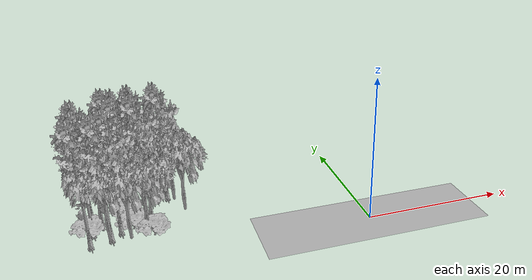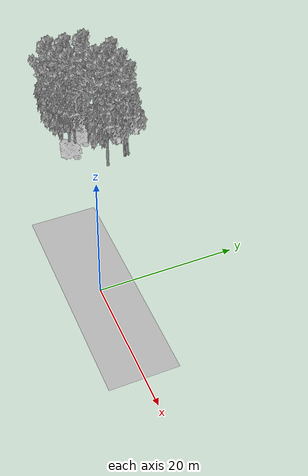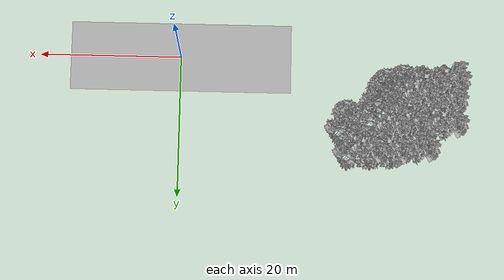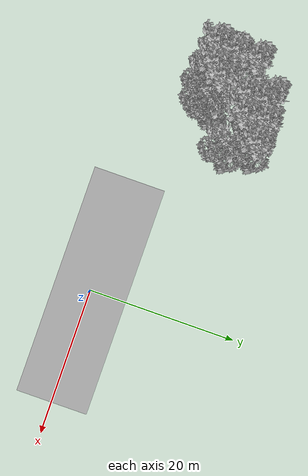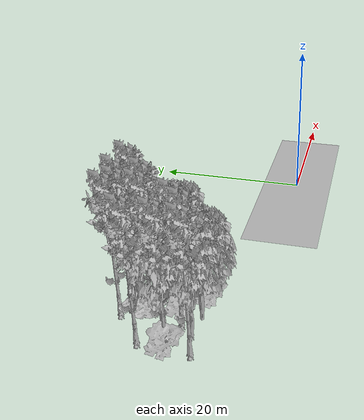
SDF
<sdf version="1.7">
 <world name="default">
  <model name="ground_plane">
   <static>1</static>
   <link name="link">
    <collision name="collision">
     <pose>-50 0 0 0 -0 0</pose>
     <geometry><plane><normal>0 0 1</normal><size>100 100</size></plane></geometry>
     <surface><contact><ode><min_depth>0.01</min_depth><max_vel>0</max_vel></ode></contact></surface>
    </collision>
    <visual name="grass">
     <cast_shadows>0</cast_shadows>
     <geometry>
      <mesh>
       <scale>0.5814285714285714 0.18142857142857144 0.1</scale>
       <uri>file://grass_plane/meshes/grass_plane.dae</uri>
      </mesh>
     </geometry>
    </visual>
   </link>
  </model>
  <model name="Tree 4">
   <static>1</static>
   <pose>-33.80315675549006 5.824767551993318 0 1.57079 -0 0</pose>
   <link name="link">
    <collision name="collision">
     <geometry><mesh><scale>3.5 5 3.5</scale><uri>model://tree_9/meshes/tree_9.obj</uri></mesh></geometry>
    </collision>
    <visual name="visual">
     <geometry><mesh><scale>3.5 5 3.5</scale><uri>model://tree_9/meshes/tree_9.obj</uri></mesh></geometry>
    </visual>
   </link>
  </model>
  <model name="Tree 53">
   <static>1</static>
   <pose>-29.01432411279122 14.427269468917586 0 1.57079 -0 0</pose>
   <link name="link">
    <collision name="collision">
     <geometry><mesh><scale>3.5 5 3.5</scale><uri>model://tree_9/meshes/tree_9.obj</uri></mesh></geometry>
    </collision>
    <visual name="visual">
     <geometry><mesh><scale>3.5 5 3.5</scale><uri>model://tree_9/meshes/tree_9.obj</uri></mesh></geometry>
    </visual>
   </link>
  </model>
  <model name="Tree 68">
   <static>1</static>
   <pose>-36.05320930856779 7.759473650637787 0 1.57079 -0 0</pose>
   <link name="link">
    <collision name="collision">
     <geometry><mesh><scale>3.5 5 3.5</scale><uri>model://tree_9/meshes/tree_9.obj</uri></mesh></geometry>
    </collision>
    <visual name="visual">
     <geometry><mesh><scale>3.5 5 3.5</scale><uri>model://tree_9/meshes/tree_9.obj</uri></mesh></geometry>
    </visual>
   </link>
  </model>
  <model name="Tree 93">
   <static>1</static>
   <pose>-23.77528565266688 10.338652237716936 0 1.57079 -0 0</pose>
   <link name="link">
    <collision name="collision">
     <geometry><mesh><scale>3.5 5 3.5</scale><uri>model://tree_2/meshes/tree_2.obj</uri></mesh></geometry>
    </collision>
    <visual name="visual">
     <geometry><mesh><scale>3.5 5 3.5</scale><uri>model://tree_2/meshes/tree_2.obj</uri></mesh></geometry>
    </visual>
   </link>
  </model>
  <model name="Tree 102">
   <static>1</static>
   <pose>-30.844475703086648 7.64915980326494 0 1.57079 -0 0</pose>
   <link name="link">
    <collision name="collision">
     <geometry><mesh><scale>3 2 3</scale><uri>model://tree_3/meshes/tree_3.obj</uri></mesh></geometry>
    </collision>
    <visual name="visual">
     <geometry><mesh><scale>3 2 3</scale><uri>model://tree_3/meshes/tree_3.obj</uri></mesh></geometry>
    </visual>
   </link>
  </model>
  <model name="Tree 182">
   <static>1</static>
   <pose>-29.15953557557495 5.885382275522236 0 1.57079 -0 0</pose>
   <link name="link">
    <collision name="collision">
     <geometry><mesh><scale>3.5 5 3.5</scale><uri>model://tree_2/meshes/tree_2.obj</uri></mesh></geometry>
    </collision>
    <visual name="visual">
     <geometry><mesh><scale>3.5 5 3.5</scale><uri>model://tree_2/meshes/tree_2.obj</uri></mesh></geometry>
    </visual>
   </link>
  </model>
  <model name="Tree 188">
   <static>1</static>
   <pose>-36.42379106106182 5.055487745484438 0 1.57079 -0 0</pose>
   <link name="link">
    <collision name="collision">
     <geometry><mesh><scale>3.5 5 3.5</scale><uri>model://tree_9/meshes/tree_9.obj</uri></mesh></geometry>
    </collision>
    <visual name="visual">
     <geometry><mesh><scale>3.5 5 3.5</scale><uri>model://tree_9/meshes/tree_9.obj</uri></mesh></geometry>
    </visual>
   </link>
  </model>
  <model name="Tree 192">
   <static>1</static>
   <pose>-31.189530188955374 13.380563399968313 0 1.57079 -0 0</pose>
   <link name="link">
    <collision name="collision">
     <geometry><mesh><scale>3.5 5 3.5</scale><uri>model://tree_9/meshes/tree_9.obj</uri></mesh></geometry>
    </collision>
    <visual name="visual">
     <geometry><mesh><scale>3.5 5 3.5</scale><uri>model://tree_9/meshes/tree_9.obj</uri></mesh></geometry>
    </visual>
   </link>
  </model>
  <model name="Tree 210">
   <static>1</static>
   <pose>-24.8841240106069 13.642376124447086 0 1.57079 -0 0</pose>
   <link name="link">
    <collision name="collision">
     <geometry><mesh><scale>3.5 5 3.5</scale><uri>model://tree_2/meshes/tree_2.obj</uri></mesh></geometry>
    </collision>
    <visual name="visual">
     <geometry><mesh><scale>3.5 5 3.5</scale><uri>model://tree_2/meshes/tree_2.obj</uri></mesh></geometry>
    </visual>
   </link>
  </model>
  <model name="Tree 244">
   <static>1</static>
   <pose>-31.431462685994262 5.318901029161847 0 1.57079 -0 0</pose>
   <link name="link">
    <collision name="collision">
     <geometry><mesh><scale>3.5 5 3.5</scale><uri>model://tree_2/meshes/tree_2.obj</uri></mesh></geometry>
    </collision>
    <visual name="visual">
     <geometry><mesh><scale>3.5 5 3.5</scale><uri>model://tree_2/meshes/tree_2.obj</uri></mesh></geometry>
    </visual>
   </link>
  </model>
  <model name="Tree 256">
   <static>1</static>
   <pose>-28.52315583488161 6.589778194603987 0 1.57079 -0 0</pose>
   <link name="link">
    <collision name="collision">
     <geometry><mesh><scale>3.5 5 3.5</scale><uri>model://tree_2/meshes/tree_2.obj</uri></mesh></geometry>
    </collision>
    <visual name="visual">
     <geometry><mesh><scale>3.5 5 3.5</scale><uri>model://tree_2/meshes/tree_2.obj</uri></mesh></geometry>
    </visual>
   </link>
  </model>
  <model name="Tree 341">
   <static>1</static>
   <pose>-36.067833347302475 10.829523028242324 0 1.57079 -0 0</pose>
   <link name="link">
    <collision name="collision">
     <geometry><mesh><scale>3.5 5 3.5</scale><uri>model://tree_9/meshes/tree_9.obj</uri></mesh></geometry>
    </collision>
    <visual name="visual">
     <geometry><mesh><scale>3.5 5 3.5</scale><uri>model://tree_9/meshes/tree_9.obj</uri></mesh></geometry>
    </visual>
   </link>
  </model>
  <model name="Tree 353">
   <static>1</static>
   <pose>-36.50397650016749 7.6003771334716355 0 1.57079 -0 0</pose>
   <link name="link">
    <collision name="collision">
     <geometry><mesh><scale>3 2 3</scale><uri>model://tree_3/meshes/tree_3.obj</uri></mesh></geometry>
    </collision>
    <visual name="visual">
     <geometry><mesh><scale>3 2 3</scale><uri>model://tree_3/meshes/tree_3.obj</uri></mesh></geometry>
    </visual>
   </link>
  </model>
  <model name="Tree 375">
   <static>1</static>
   <pose>-32.38384438112887 14.105232138740455 0 1.57079 -0 0</pose>
   <link name="link">
    <collision name="collision">
     <geometry><mesh><scale>3.5 5 3.5</scale><uri>model://tree_9/meshes/tree_9.obj</uri></mesh></geometry>
    </collision>
    <visual name="visual">
     <geometry><mesh><scale>3.5 5 3.5</scale><uri>model://tree_9/meshes/tree_9.obj</uri></mesh></geometry>
    </visual>
   </link>
  </model>
  <model name="Tree 377">
   <static>1</static>
   <pose>-28.970084308400676 11.493025351105178 0 1.57079 -0 0</pose>
   <link name="link">
    <collision name="collision">
     <geometry><mesh><scale>3.5 5 3.5</scale><uri>model://tree_9/meshes/tree_9.obj</uri></mesh></geometry>
    </collision>
    <visual name="visual">
     <geometry><mesh><scale>3.5 5 3.5</scale><uri>model://tree_9/meshes/tree_9.obj</uri></mesh></geometry>
    </visual>
   </link>
  </model>
  <model name="Tree 408">
   <static>1</static>
   <pose>-32.204491569211136 11.551764940333577 0 1.57079 -0 0</pose>
   <link name="link">
    <collision name="collision">
     <geometry><mesh><scale>4 2.5 4</scale><uri>model://tree_1/meshes/tree_1.obj</uri></mesh></geometry>
    </collision>
    <visual name="visual">
     <geometry><mesh><scale>4 2.5 4</scale><uri>model://tree_1/meshes/tree_1.obj</uri></mesh></geometry>
    </visual>
   </link>
  </model>
  <model name="Tree 409">
   <static>1</static>
   <pose>-31.369928375539835 11.02079642284076 0 1.57079 -0 0</pose>
   <link name="link">
    <collision name="collision">
     <geometry><mesh><scale>3.5 5 3.5</scale><uri>model://tree_9/meshes/tree_9.obj</uri></mesh></geometry>
    </collision>
    <visual name="visual">
     <geometry><mesh><scale>3.5 5 3.5</scale><uri>model://tree_9/meshes/tree_9.obj</uri></mesh></geometry>
    </visual>
   </link>
  </model>
  <model name="Tree 421">
   <static>1</static>
   <pose>-28.348594741504048 5.304683207386461 0 1.57079 -0 0</pose>
   <link name="link">
    <collision name="collision">
     <geometry><mesh><scale>3 2 3</scale><uri>model://tree_3/meshes/tree_3.obj</uri></mesh></geometry>
    </collision>
    <visual name="visual">
     <geometry><mesh><scale>3 2 3</scale><uri>model://tree_3/meshes/tree_3.obj</uri></mesh></geometry>
    </visual>
   </link>
  </model>
  <model name="Tree 506">
   <static>1</static>
   <pose>-25.69639844808827 14.444121864563805 0 1.57079 -0 0</pose>
   <link name="link">
    <collision name="collision">
     <geometry><mesh><scale>3.5 5 3.5</scale><uri>model://tree_9/meshes/tree_9.obj</uri></mesh></geometry>
    </collision>
    <visual name="visual">
     <geometry><mesh><scale>3.5 5 3.5</scale><uri>model://tree_9/meshes/tree_9.obj</uri></mesh></geometry>
    </visual>
   </link>
  </model>
  <model name="Tree 519">
   <static>1</static>
   <pose>-34.059293634919364 5.634274613984118 0 1.57079 -0 0</pose>
   <link name="link">
    <collision name="collision">
     <geometry><mesh><scale>3.5 5 3.5</scale><uri>model://tree_2/meshes/tree_2.obj</uri></mesh></geometry>
    </collision>
    <visual name="visual">
     <geometry><mesh><scale>3.5 5 3.5</scale><uri>model://tree_2/meshes/tree_2.obj</uri></mesh></geometry>
    </visual>
   </link>
  </model>
  <model name="Tree 520">
   <static>1</static>
   <pose>-32.54542053337181 7.195050746735813 0 1.57079 -0 0</pose>
   <link name="link">
    <collision name="collision">
     <geometry><mesh><scale>3.5 5 3.5</scale><uri>model://tree_9/meshes/tree_9.obj</uri></mesh></geometry>
    </collision>
    <visual name="visual">
     <geometry><mesh><scale>3.5 5 3.5</scale><uri>model://tree_9/meshes/tree_9.obj</uri></mesh></geometry>
    </visual>
   </link>
  </model>
  <model name="Tree 528">
   <static>1</static>
   <pose>-28.00314740288449 13.552689969956397 0 1.57079 -0 0</pose>
   <link name="link">
    <collision name="collision">
     <geometry><mesh><scale>3.5 5 3.5</scale><uri>model://tree_2/meshes/tree_2.obj</uri></mesh></geometry>
    </collision>
    <visual name="visual">
     <geometry><mesh><scale>3.5 5 3.5</scale><uri>model://tree_2/meshes/tree_2.obj</uri></mesh></geometry>
    </visual>
   </link>
  </model>
  <model name="Tree 537">
   <static>1</static>
   <pose>-34.826060732725004 8.323386867886523 0 1.57079 -0 0</pose>
   <link name="link">
    <collision name="collision">
     <geometry><mesh><scale>3.5 5 3.5</scale><uri>model://tree_2/meshes/tree_2.obj</uri></mesh></geometry>
    </collision>
    <visual name="visual">
     <geometry><mesh><scale>3.5 5 3.5</scale><uri>model://tree_2/meshes/tree_2.obj</uri></mesh></geometry>
    </visual>
   </link>
  </model>
 </world>
</sdf>
